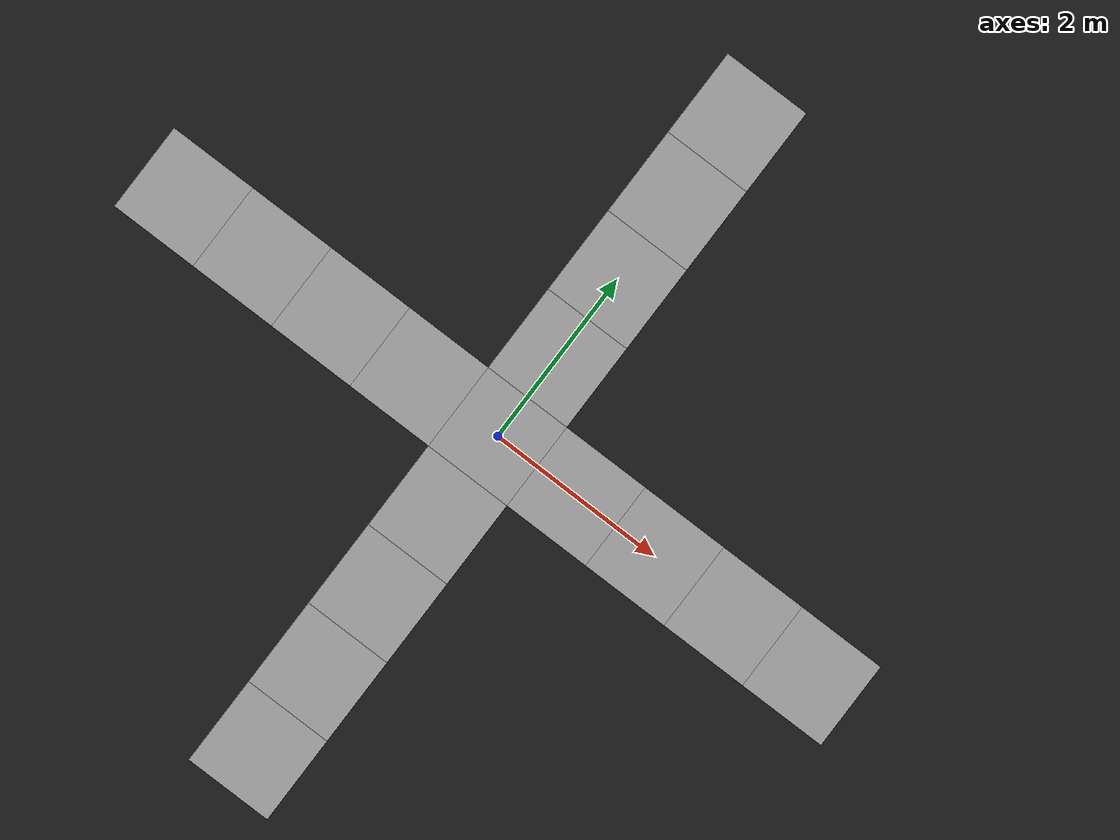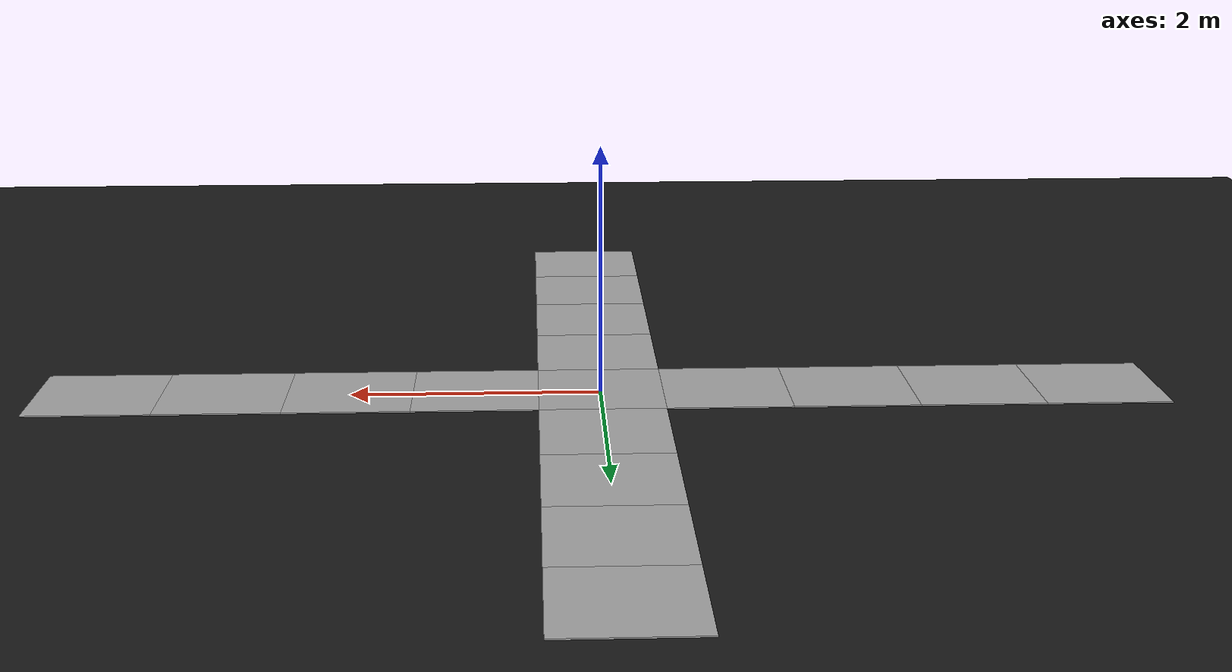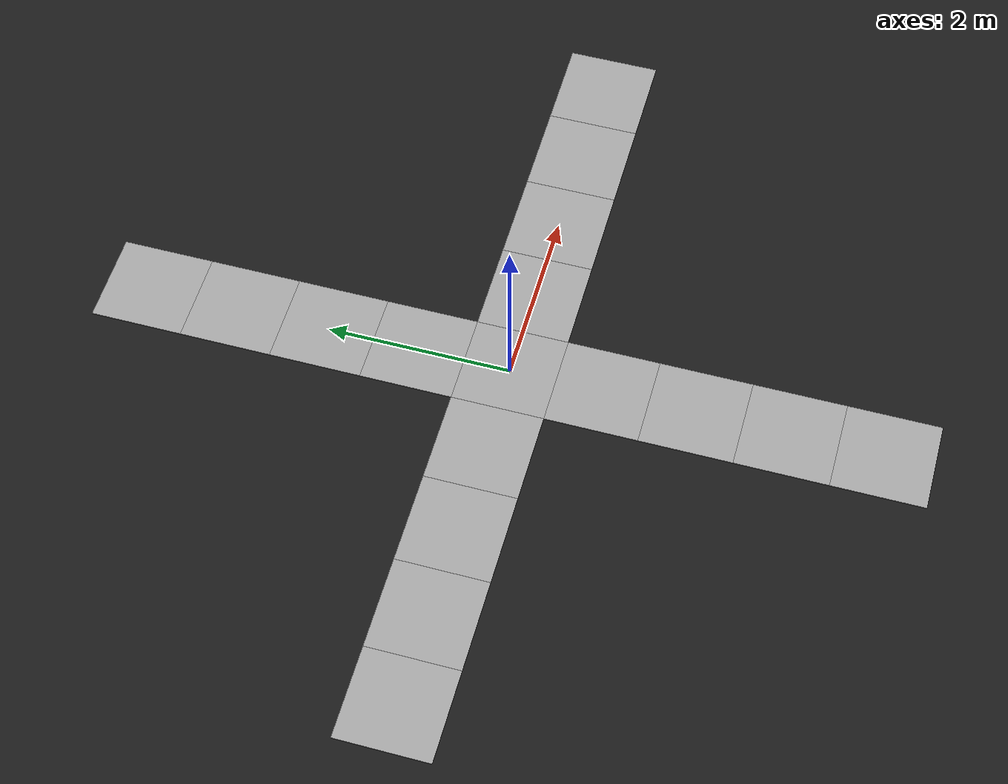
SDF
<sdf version="1.4">
 <world name="stopIntersection">
  <include><uri>model://sun</uri></include>
  <model name="ground_plane">
   <static>true</static>
   <link name="link">
    <collision name="collision">
     <geometry><plane><normal>0 0 1</normal><size>150 150</size></plane></geometry>
     <surface><friction><ode><mu>100</mu><mu2>50</mu2></ode></friction></surface>
    </collision>
    <visual name="visual">
     <cast_shadows>false</cast_shadows>
     <geometry><plane><normal>0 0 1</normal><size>150 150</size></plane></geometry>
     <material>
      <script><uri>file://media/materials/scripts/gazebo.material</uri><name>Gazebo/FlatBlack</name></script>
     </material>
    </visual>
   </link>
  </model>
  <include>
   <static>true</static>
   <name>a_1</name>
   <uri>model://segment_straight</uri>
   <pose>-4 0 0 0 0 0</pose>
  </include>
  <include>
   <static>true</static>
   <name>a_2</name>
   <uri>../models/segment_straight</uri>
   <pose>-3 0 0 0 0 0</pose>
  </include>
  <include>
   <static>true</static>
   <name>a_3</name>
   <uri>../models/segment_straight</uri>
   <pose>-2 0 0 0 0 0</pose>
  </include>
  <include>
   <static>true</static>
   <name>a_4</name>
   <uri>../models/segment_straight</uri>
   <pose>-1 0 0 0 0 0</pose>
  </include>
  <include>
   <static>true</static>
   <name>a_5</name>
   <uri>../models/segment_straight</uri>
   <pose>1 0 0 0 0 0</pose>
  </include>
  <include>
   <static>true</static>
   <name>a_6</name>
   <uri>../models/segment_straight</uri>
   <pose>2 0 0 0 0 0</pose>
  </include>
  <include>
   <static>true</static>
   <name>a_7</name>
   <uri>../models/segment_straight</uri>
   <pose>3 0 0 0 0 0</pose>
  </include>
  <include>
   <static>true</static>
   <name>a_8</name>
   <uri>../models/segment_straight</uri>
   <pose>4 0 0 0 0 0</pose>
  </include>
  <include><static>true</static><name>center</name><uri>../models/segment_inter</uri></include>
  <include>
   <static>true</static>
   <name>b_1</name>
   <uri>../models/segment_straight</uri>
   <pose>0 4 0 0 0 1.57079632679</pose>
  </include>
  <include>
   <static>true</static>
   <name>b_2</name>
   <uri>../models/segment_straight</uri>
   <pose>0 3 0 0 0 1.57079632679</pose>
  </include>
  <include>
   <static>true</static>
   <name>b_3</name>
   <uri>../models/segment_straight</uri>
   <pose>0 2 0 0 0 1.57079632679</pose>
  </include>
  <include>
   <static>true</static>
   <name>b_4</name>
   <uri>../models/segment_straight</uri>
   <pose>0 1 0 0 0 1.57079632679</pose>
  </include>
  <include>
   <static>true</static>
   <name>b_5</name>
   <uri>../models/segment_straight</uri>
   <pose>0 -1 0 0 0 1.57079632679</pose>
  </include>
  <include>
   <static>true</static>
   <name>b_6</name>
   <uri>../models/segment_straight</uri>
   <pose>0 -2 0 0 0 1.57079632679</pose>
  </include>
  <include>
   <static>true</static>
   <name>b_7</name>
   <uri>../models/segment_straight</uri>
   <pose>0 -3 0 0 0 1.57079632679</pose>
  </include>
  <include>
   <static>true</static>
   <name>b_8</name>
   <uri>../models/segment_straight</uri>
   <pose>0 -4 0 0 0 1.57079632679</pose>
  </include>
 </world>
</sdf>

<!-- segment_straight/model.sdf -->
<sdf version="1.4">
  <model name="segment_straight">
    <link name='link'>
      <inertial>
        <mass>10</mass>
        <inertia>
          <ixx>0.166667</ixx>
          <ixy>0</ixy>
          <ixz>0</ixz>
          <iyy>0.166667</iyy>
          <iyz>0</iyz>
          <izz>0.166667</izz>
        </inertia>
        <pose frame=''>0 0 0 0 -0 0</pose>
      </inertial>
      <pose frame=''>0 0 0.025 0 -0 0</pose>
      <gravity>1</gravity>
      <self_collide>0</self_collide>
      <kinematic>0</kinematic>
      <enable_wind>0</enable_wind>
      <visual name='visual'>
        <pose frame=''>0 0 0 0 -0 0</pose>
        <geometry>
          <box>
            <size>1 1 0.01</size>
          </box>
        </geometry>
        <material>
          <lighting>1</lighting>
          <script>
            <uri>model://segment_straight/materials/scripts/segment_straight.material</uri>
            <name>SegmentStraight/Image</name>
          </script>
          <shader type='vertex'>
            <normal_map>__default__</normal_map>
          </shader>
          <ambient>0.3 0.3 0.3 1</ambient>
          <diffuse>0.7 0.7 0.7 1</diffuse>
          <specular>0.01 0.01 0.01 1</specular>
          <emissive>0 0 0 1</emissive>
        </material>
        <transparency>0</transparency>
        <cast_shadows>1</cast_shadows>
      </visual>
      <collision name='collision'>
        <laser_retro>0</laser_retro>
        <max_contacts>10</max_contacts>
        <pose frame=''>0 0 0 0 -0 0</pose>
        <geometry>
          <box>
            <size>1 1 0.01</size>
          </box>
        </geometry>
      </collision>
    </link>
    <static>0</static>
    <allow_auto_disable>1</allow_auto_disable>
  </model>
</sdf>

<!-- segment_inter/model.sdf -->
<sdf version="1.4">
  <model name="segment_inter">
    <link name='link'>
      <inertial>
        <mass>10</mass>
        <inertia>
          <ixx>0.166667</ixx>
          <ixy>0</ixy>
          <ixz>0</ixz>
          <iyy>0.166667</iyy>
          <iyz>0</iyz>
          <izz>0.166667</izz>
        </inertia>
        <pose frame=''>0 0 0 0 -0 0</pose>
      </inertial>
      <pose frame=''>0 0 0.025 0 -0 0</pose>
      <gravity>1</gravity>
      <self_collide>0</self_collide>
      <kinematic>0</kinematic>
      <enable_wind>0</enable_wind>
      <visual name='visual'>
        <pose frame=''>0 0 0 0 -0 0</pose>
        <geometry>
          <box>
            <size>1 1 0.01</size>
          </box>
        </geometry>
        <material>
          <lighting>1</lighting>
          <script>
            <uri>model://segment_inter/materials/scripts/segment_inter.material</uri>
            <name>SegmentInter/Image</name>
          </script>
          <shader type='vertex'>
            <normal_map>__default__</normal_map>
          </shader>
          <ambient>0.3 0.3 0.3 1</ambient>
          <diffuse>0.7 0.7 0.7 1</diffuse>
          <specular>0.01 0.01 0.01 1</specular>
          <emissive>0 0 0 1</emissive>
        </material>
        <transparency>0</transparency>
        <cast_shadows>1</cast_shadows>
      </visual>
      <collision name='collision'>
        <laser_retro>0</laser_retro>
        <max_contacts>10</max_contacts>
        <pose frame=''>0 0 0 0 -0 0</pose>
        <geometry>
          <box>
            <size>1 1 0.01</size>
          </box>
        </geometry>
      </collision>
    </link>
    <static>0</static>
    <allow_auto_disable>1</allow_auto_disable>
  </model>
</sdf>
